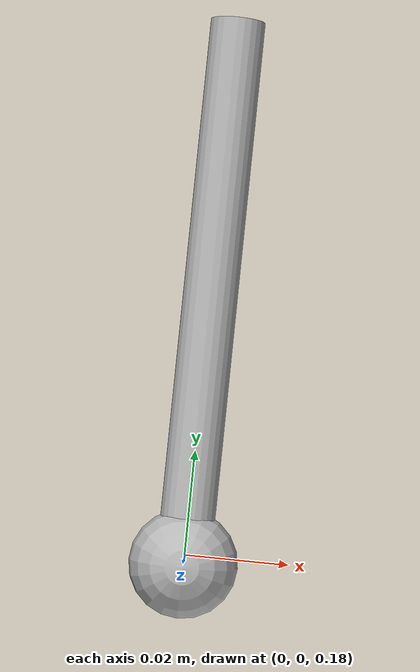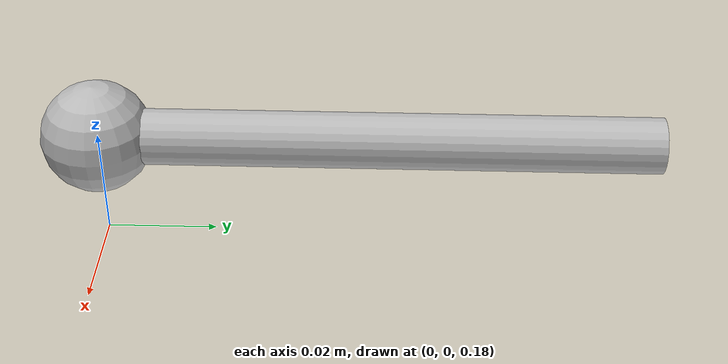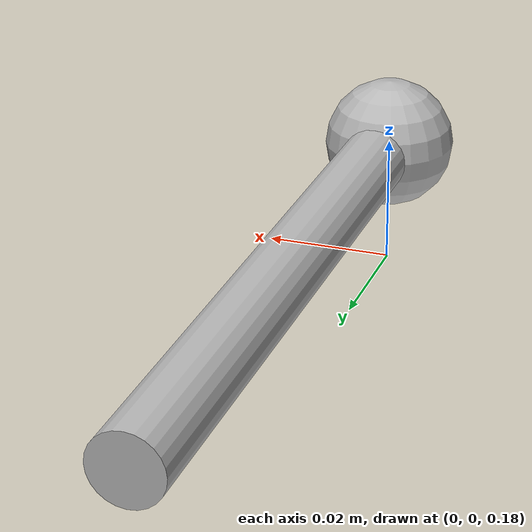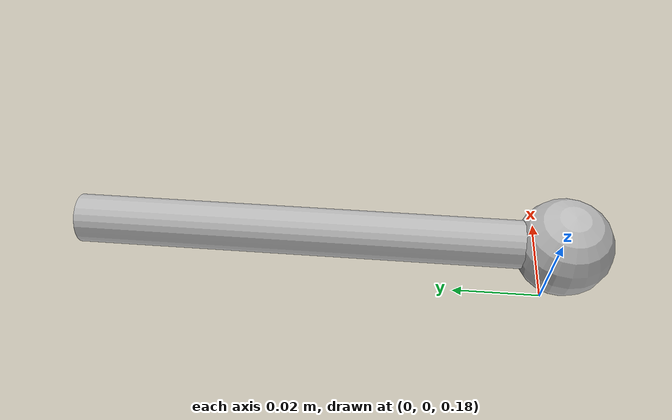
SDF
<?xml version="1.0"?>
<sdf version="1.6">
  <world name="default">
    <physics name="default_physics" default="0" type="ode">
      <max_step_size>0.001</max_step_size>
      <real_time_factor>1</real_time_factor>
      <real_time_update_rate>1000</real_time_update_rate>
      <ode>
        <solver>
          <type>quick</type>
          <iters>50</iters>
          <sor>1.0</sor> <!-- Important, see issue #2209 -->
          <use_dynamic_moi_rescaling>false</use_dynamic_moi_rescaling>
        </solver>
      </ode>
    </physics>
    <include>
      <uri>model://ground_plane</uri>
    </include>
    <include>
      <uri>model://sun</uri>
    </include>
    <model name="model_1">
      <link name="link_1">
        <pose>0 0 0.2 0 0 0</pose>
        <inertial>
          <inertia>
            <ixx>0.0000100000</ixx>
            <ixy>0.000000</ixy>
            <ixz>0.000000</ixz>
            <iyy>0.0000100000</iyy>
            <iyz>0.000000</iyz>
            <izz>0.0000100000</izz>
          </inertia>
          <mass>0.10000</mass>
        </inertial>
        <visual name="visual_sphere">
          <geometry>
            <sphere>
              <radius>0.010000</radius>
            </sphere>
          </geometry>
        </visual>
        <visual name="visual_cylinder">
          <pose>0 0.05 0 1.57 0 0</pose>
          <geometry>
            <cylinder>
              <radius>0.0050000</radius>
              <length>0.1</length>
            </cylinder>
          </geometry>
        </visual>
        <collision name="collision_sphere">
          <max_contacts>250</max_contacts>
          <geometry>
            <sphere>
              <radius>0.010000</radius>
            </sphere>
          </geometry>
        </collision>
      </link>
      <joint name="joint_01" type="revolute">
        <parent>world</parent>
        <child>link_1</child>
        <pose>0 0.1 0 0 0 0</pose>
        <axis>
          <limit>
            <lower>-1.57079</lower>
            <upper>1.57079</upper>
          </limit>
          <dynamics>
            <spring_stiffness>0.1</spring_stiffness>
            <damping>0.0005</damping>
            <friction>0.00010000</friction>
          </dynamics>
          <xyz>1.000000 0.000000 0.000000</xyz>
        </axis>
        <sensor name="force_torque" type="force_torque">
          <update_rate>30</update_rate>
        </sensor>
      </joint>
    </model>
  </world>
</sdf>
